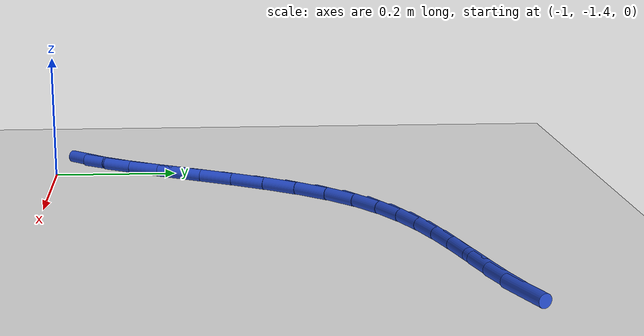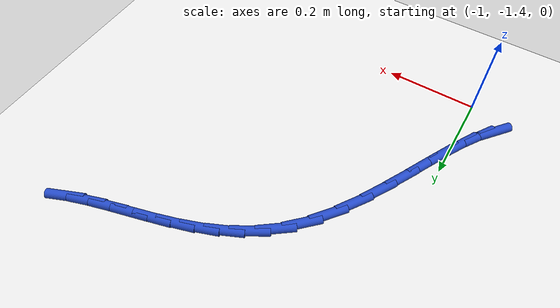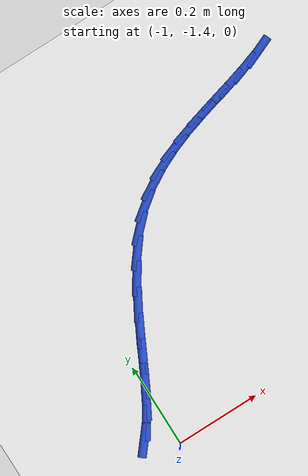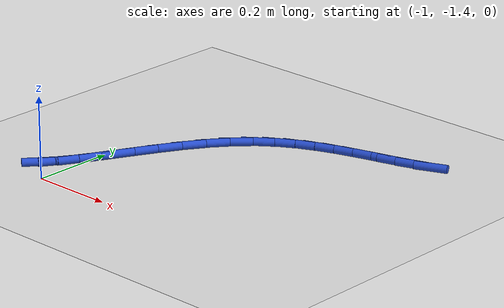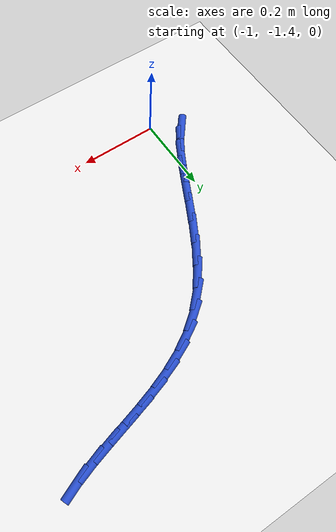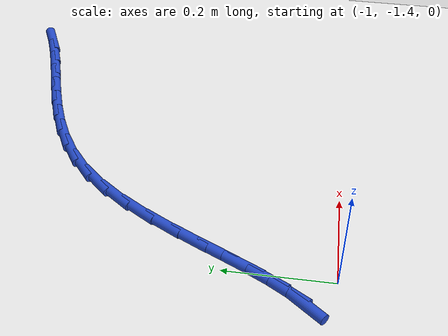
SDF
<sdf version="1.6">
 <world name="default">
  <model name="ground_plane">
   <static>1</static>
   <link name="link">
    <collision name="collision">
     <geometry><plane><normal>0 0 1</normal><size>100 100</size></plane></geometry>
     <surface><friction><ode><mu>100</mu><mu2>50</mu2></ode></friction></surface>
    </collision>
    <visual name="visual">
     <cast_shadows>0</cast_shadows>
     <geometry><plane><normal>0 0 1</normal><size>100 100</size></plane></geometry>
     <material>
      <script><uri>file://media/materials/scripts/gazebo.material</uri><name>Gazebo/WhiteGlow</name></script>
     </material>
    </visual>
   </link>
  </model>
  <model name="line">
   <link name="link_122">
    <pose>-1.0634461232225836 -1.3490336197689499 0.01 0 1.57 0.8797225625496233</pose>
    <collision name="collision">
     <geometry><cylinder><radius>0.01</radius><length>0.08</length></cylinder></geometry>
    </collision>
    <visual name="visual">
     <material>
      <script><name>Gazebo/Blue</name><uri>file://media/materials/scripts/gazebo.material</uri></script>
     </material>
     <geometry><cylinder><radius>0.01</radius><length>0.08</length></cylinder></geometry>
    </visual>
   </link>
   <link name="link_123">
    <pose>-1.039351709886055 -1.3199039332295113 0.01 0 1.57 1.0025492758608119</pose>
    <collision name="collision">
     <geometry><cylinder><radius>0.01</radius><length>0.08</length></cylinder></geometry>
    </collision>
    <visual name="visual">
     <material>
      <script><name>Gazebo/Blue</name><uri>file://media/materials/scripts/gazebo.material</uri></script>
     </material>
     <geometry><cylinder><radius>0.01</radius><length>0.08</length></cylinder></geometry>
    </visual>
   </link>
   <link name="link_124">
    <pose>-1.0154526455866613 -1.2824738127340056 0.01 0 1.57 1.068065758040364</pose>
    <collision name="collision">
     <geometry><cylinder><radius>0.01</radius><length>0.08</length></cylinder></geometry>
    </collision>
    <visual name="visual">
     <material>
      <script><name>Gazebo/Blue</name><uri>file://media/materials/scripts/gazebo.material</uri></script>
     </material>
     <geometry><cylinder><radius>0.01</radius><length>0.08</length></cylinder></geometry>
    </visual>
   </link>
   <link name="link_125">
    <pose>-0.9913418932493169 -1.2386243847878533 0.01 0 1.57 1.0983316243918173</pose>
    <collision name="collision">
     <geometry><cylinder><radius>0.01</radius><length>0.08</length></cylinder></geometry>
    </collision>
    <visual name="visual">
     <material>
      <script><name>Gazebo/Blue</name><uri>file://media/materials/scripts/gazebo.material</uri></script>
     </material>
     <geometry><cylinder><radius>0.01</radius><length>0.08</length></cylinder></geometry>
    </visual>
   </link>
   <link name="link_126">
    <pose>-0.9666124157989363 -1.1902367758964734 0.01 0 1.57 1.1035051223098473</pose>
    <collision name="collision">
     <geometry><cylinder><radius>0.01</radius><length>0.08</length></cylinder></geometry>
    </collision>
    <visual name="visual">
     <material>
      <script><name>Gazebo/Blue</name><uri>file://media/materials/scripts/gazebo.material</uri></script>
     </material>
     <geometry><cylinder><radius>0.01</radius><length>0.08</length></cylinder></geometry>
    </visual>
   </link>
   <link name="link_127">
    <pose>-0.9408571761604345 -1.1391921125652884 0.01 0 1.57 1.087618206343686</pose>
    <collision name="collision">
     <geometry><cylinder><radius>0.01</radius><length>0.08</length></cylinder></geometry>
    </collision>
    <visual name="visual">
     <material>
      <script><name>Gazebo/Blue</name><uri>file://media/materials/scripts/gazebo.material</uri></script>
     </material>
     <geometry><cylinder><radius>0.01</radius><length>0.08</length></cylinder></geometry>
    </visual>
   </link>
   <link name="link_128">
    <pose>-0.9136691372587252 -1.087371521299717 0.01 0 1.57 1.0509422052948945</pose>
    <collision name="collision">
     <geometry><cylinder><radius>0.01</radius><length>0.08</length></cylinder></geometry>
    </collision>
    <visual name="visual">
     <material>
      <script><name>Gazebo/Blue</name><uri>file://media/materials/scripts/gazebo.material</uri></script>
     </material>
     <geometry><cylinder><radius>0.01</radius><length>0.08</length></cylinder></geometry>
    </visual>
   </link>
   <link name="link_129">
    <pose>-0.8846412620187237 -1.0366561286051799 0.01 0 1.57 0.99073520829271</pose>
    <collision name="collision">
     <geometry><cylinder><radius>0.01</radius><length>0.08</length></cylinder></geometry>
    </collision>
    <visual name="visual">
     <material>
      <script><name>Gazebo/Blue</name><uri>file://media/materials/scripts/gazebo.material</uri></script>
     </material>
     <geometry><cylinder><radius>0.01</radius><length>0.08</length></cylinder></geometry>
    </visual>
   </link>
   <link name="link_130">
    <pose>-0.8533665133653432 -0.9889270609870967 0.01 0 1.57 0.9012069144530354</pose>
    <collision name="collision">
     <geometry><cylinder><radius>0.01</radius><length>0.08</length></cylinder></geometry>
    </collision>
    <visual name="visual">
     <material>
      <script><name>Gazebo/Blue</name><uri>file://media/materials/scripts/gazebo.material</uri></script>
     </material>
     <geometry><cylinder><radius>0.01</radius><length>0.08</length></cylinder></geometry>
    </visual>
   </link>
   <link name="link_131">
    <pose>-0.8194378542234982 -0.9460654449508873 0.01 0 1.57 0.7767578707547819</pose>
    <collision name="collision">
     <geometry><cylinder><radius>0.01</radius><length>0.08</length></cylinder></geometry>
    </collision>
    <visual name="visual">
     <material>
      <script><name>Gazebo/Blue</name><uri>file://media/materials/scripts/gazebo.material</uri></script>
     </material>
     <geometry><cylinder><radius>0.01</radius><length>0.08</length></cylinder></geometry>
    </visual>
   </link>
   <link name="link_132">
    <pose>-0.7825070832546311 -0.9097674080574178 0.01 0 1.57 0.643394105081678</pose>
    <collision name="collision">
     <geometry><cylinder><radius>0.01</radius><length>0.08</length></cylinder></geometry>
    </collision>
    <visual name="visual">
     <material>
      <script><name>Gazebo/Blue</name><uri>file://media/materials/scripts/gazebo.material</uri></script>
     </material>
     <geometry><cylinder><radius>0.01</radius><length>0.08</length></cylinder></geometry>
    </visual>
   </link>
   <link name="link_133">
    <pose>-0.742782151771765 -0.8799803506546805 0.01 0 1.57 0.5243094415963878</pose>
    <collision name="collision">
     <geometry><cylinder><radius>0.01</radius><length>0.08</length></cylinder></geometry>
    </collision>
    <visual name="visual">
     <material>
      <script><name>Gazebo/Blue</name><uri>file://media/materials/scripts/gazebo.material</uri></script>
     </material>
     <geometry><cylinder><radius>0.01</radius><length>0.08</length></cylinder></geometry>
    </visual>
   </link>
   <link name="link_134">
    <pose>-0.7007771871432054 -0.8556889546746332 0.01 0 1.57 0.4252380161447753</pose>
    <collision name="collision">
     <geometry><cylinder><radius>0.01</radius><length>0.08</length></cylinder></geometry>
    </collision>
    <visual name="visual">
     <material>
      <script><name>Gazebo/Blue</name><uri>file://media/materials/scripts/gazebo.material</uri></script>
     </material>
     <geometry><cylinder><radius>0.01</radius><length>0.08</length></cylinder></geometry>
    </visual>
   </link>
   <link name="link_135">
    <pose>-0.6570095023776551 -0.8358678853460237 0.01 0 1.57 0.3489216940498696</pose>
    <collision name="collision">
     <geometry><cylinder><radius>0.01</radius><length>0.08</length></cylinder></geometry>
    </collision>
    <visual name="visual">
     <material>
      <script><name>Gazebo/Blue</name><uri>file://media/materials/scripts/gazebo.material</uri></script>
     </material>
     <geometry><cylinder><radius>0.01</radius><length>0.08</length></cylinder></geometry>
    </visual>
   </link>
   <link name="link_136">
    <pose>-0.611996410483816 -0.819491807897599 0.01 0 1.57 0.2961447910962637</pose>
    <collision name="collision">
     <geometry><cylinder><radius>0.01</radius><length>0.08</length></cylinder></geometry>
    </collision>
    <visual name="visual">
     <material>
      <script><name>Gazebo/Blue</name><uri>file://media/materials/scripts/gazebo.material</uri></script>
     </material>
     <geometry><cylinder><radius>0.01</radius><length>0.08</length></cylinder></geometry>
    </visual>
   </link>
   <link name="link_137">
    <pose>-0.5662552244703923 -0.8055353875581069 0.01 0 1.57 0.26685440914228514</pose>
    <collision name="collision">
     <geometry><cylinder><radius>0.01</radius><length>0.08</length></cylinder></geometry>
    </collision>
    <visual name="visual">
     <material>
      <script><name>Gazebo/Blue</name><uri>file://media/materials/scripts/gazebo.material</uri></script>
     </material>
     <geometry><cylinder><radius>0.01</radius><length>0.08</length></cylinder></geometry>
    </visual>
   </link>
   <link name="link_138">
    <pose>-0.5203032573460854 -0.792973289556294 0.01 0 1.57 0.26103175148674895</pose>
    <collision name="collision">
     <geometry><cylinder><radius>0.01</radius><length>0.08</length></cylinder></geometry>
    </collision>
    <visual name="visual">
     <material>
      <script><name>Gazebo/Blue</name><uri>file://media/materials/scripts/gazebo.material</uri></script>
     </material>
     <geometry><cylinder><radius>0.01</radius><length>0.08</length></cylinder></geometry>
    </visual>
   </link>
   <link name="link_139">
    <pose>-0.474657822119598 -0.7807801791209081 0.01 0 1.57 0.27919234634828644</pose>
    <collision name="collision">
     <geometry><cylinder><radius>0.01</radius><length>0.08</length></cylinder></geometry>
    </collision>
    <visual name="visual">
     <material>
      <script><name>Gazebo/Blue</name><uri>file://media/materials/scripts/gazebo.material</uri></script>
     </material>
     <geometry><cylinder><radius>0.01</radius><length>0.08</length></cylinder></geometry>
    </visual>
   </link>
   <link name="link_140">
    <pose>-0.42983623179963254 -0.7679307214806961 0.01 0 1.57 0.3225299192450575</pose>
    <collision name="collision">
     <geometry><cylinder><radius>0.01</radius><length>0.08</length></cylinder></geometry>
    </collision>
    <visual name="visual">
     <material>
      <script><name>Gazebo/Blue</name><uri>file://media/materials/scripts/gazebo.material</uri></script>
     </material>
     <geometry><cylinder><radius>0.01</radius><length>0.08</length></cylinder></geometry>
    </visual>
   </link>
   <link name="link_141">
    <pose>-0.3863557993948909 -0.7533995818644051 0.01 0 1.57 0.3926534608593946</pose>
    <collision name="collision">
     <geometry><cylinder><radius>0.01</radius><length>0.08</length></cylinder></geometry>
    </collision>
    <visual name="visual">
     <material>
      <script><name>Gazebo/Blue</name><uri>file://media/materials/scripts/gazebo.material</uri></script>
     </material>
     <geometry><cylinder><radius>0.01</radius><length>0.08</length></cylinder></geometry>
    </visual>
   </link>
  </model>
 </world>
</sdf>
